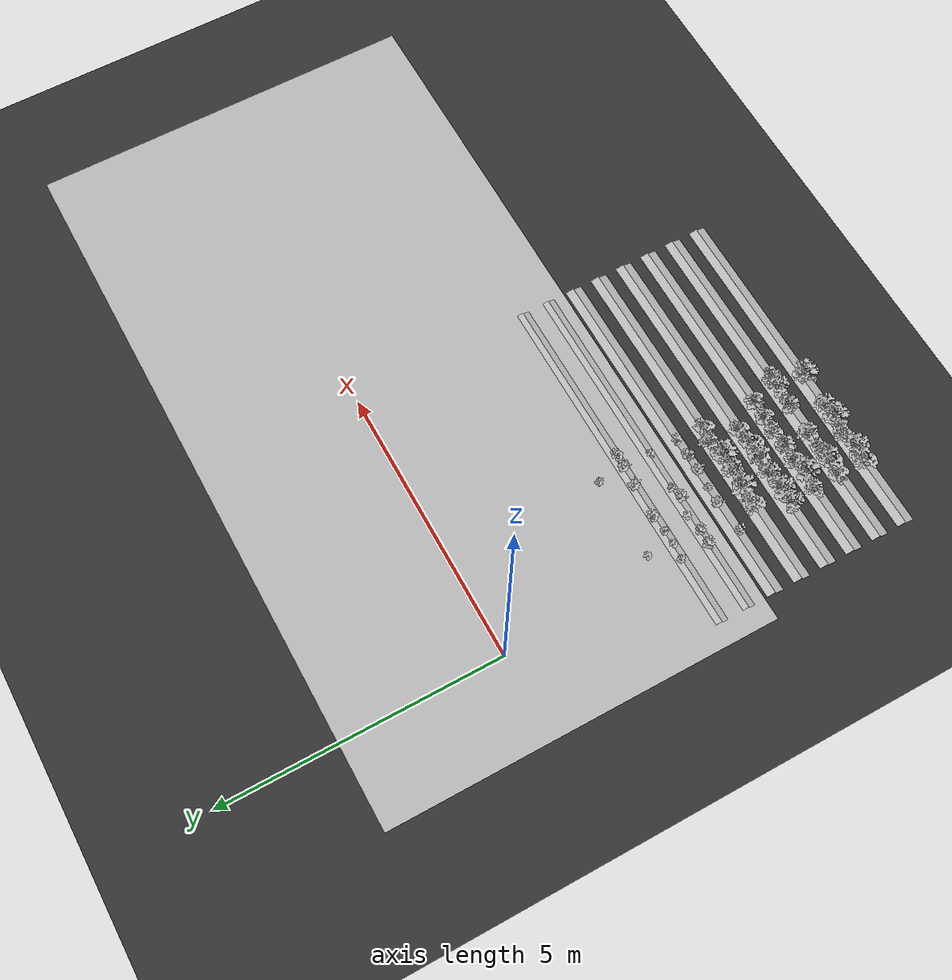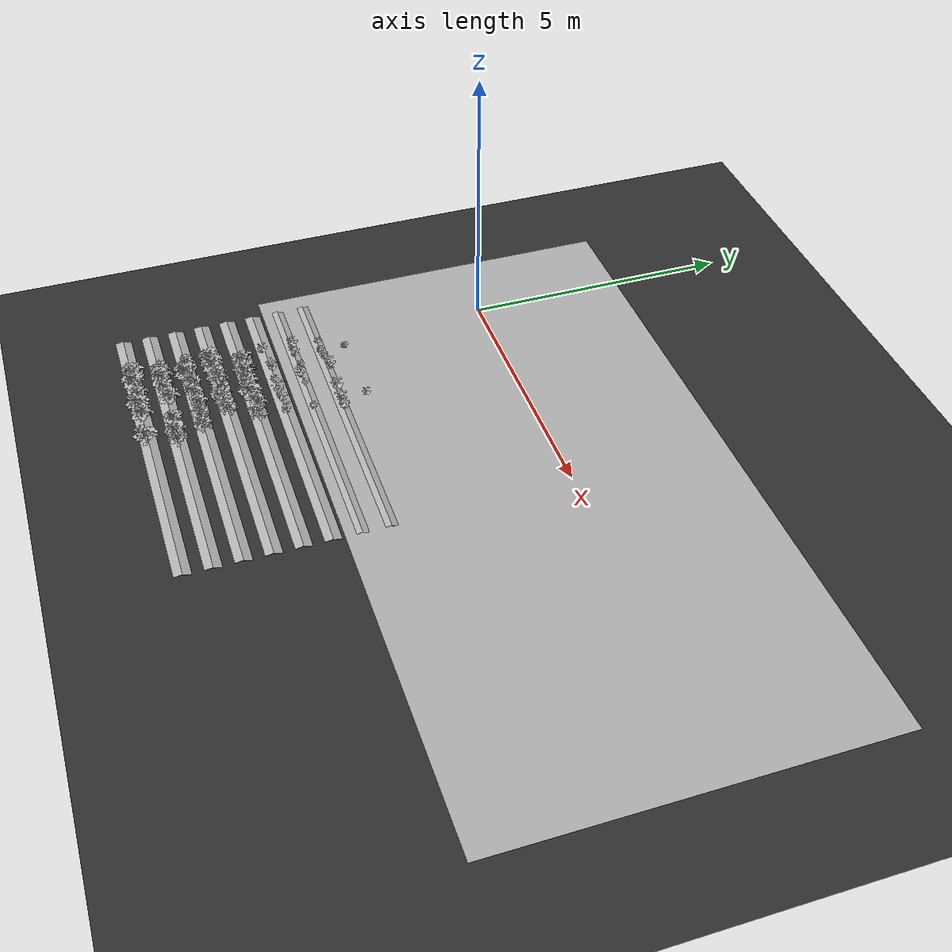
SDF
<sdf version="1.7">
 <world name="default">
  <model name="ground_plane">
   <static>1</static>
   <link name="link">
    <collision name="collision">
     <geometry><plane><normal>0 0 1</normal><size>100 100</size></plane></geometry>
     <surface>
      <contact><collide_bitmask>65535</collide_bitmask></contact>
      <friction><ode><mu>100</mu><mu2>50</mu2></ode></friction>
     </surface>
    </collision>
    <visual name="visual">
     <cast_shadows>0</cast_shadows>
     <geometry><plane><normal>0 0 1</normal><size>100 100</size></plane></geometry>
     <material>
      <ambient>0.2 0.2 0.2 1.0</ambient>
      <diffuse>0.2 0.2 0.2 1.0</diffuse>
      <specular>0.2 0.2 0.2 1.0</specular>
      <emissive>0.2 0.2 0.2 1.0</emissive>
     </material>
    </visual>
   </link>
  </model>
  <model name="ground">
   <pose>5 -0.5 0.01  3.141592654 0 0</pose>
   <static>true</static>
   <link name="body">
    <visual name="visual">
     <cast_shadows>0</cast_shadows>
     <geometry>
      <mesh><uri>file:///home/ifcosta/catkin_ws/src/cnn_line/worlds/models/ground.obj</uri></mesh>
     </geometry>
    </visual>
   </link>
  </model>
  <model name="plt_10000">
   <pose>-0.000553 -4.3 0.0132 0.0 0.0 1.0333</pose>
   <static>true</static>
   <link name="body">
    <visual name="visual">
     <geometry>
      <mesh><uri>file:///home/ifcosta/catkin_ws/src/cnn_line/worlds/models/plant12.obj</uri></mesh>
     </geometry>
    </visual>
   </link>
  </model>
  <model name="plt_10002">
   <pose>0.57 -4.24 0.0132 0.0 0.0 -0.0059313</pose>
   <static>true</static>
   <link name="body">
    <visual name="visual">
     <geometry>
      <mesh><uri>file:///home/ifcosta/catkin_ws/src/cnn_line/worlds/models/plant13.obj</uri></mesh>
     </geometry>
    </visual>
   </link>
  </model>
  <model name="plt_10003">
   <pose>0.885 -4.27 0.0162 0.0 0.0 0.86365</pose>
   <static>true</static>
   <link name="body">
    <visual name="visual">
     <geometry>
      <mesh><uri>file:///home/ifcosta/catkin_ws/src/cnn_line/worlds/models/plant10.obj</uri></mesh>
     </geometry>
    </visual>
   </link>
  </model>
  <model name="plt_10004">
   <pose>1.21 -4.27 0.0178 0.0 0.0 0.60568</pose>
   <static>true</static>
   <link name="body">
    <visual name="visual">
     <geometry>
      <mesh><uri>file:///home/ifcosta/catkin_ws/src/cnn_line/worlds/models/plant13.obj</uri></mesh>
     </geometry>
    </visual>
   </link>
  </model>
  <model name="plt_10005">
   <pose>1.5 -4.27 0.0163 0.0 0.0 -0.77135</pose>
   <static>true</static>
   <link name="body">
    <visual name="visual">
     <geometry>
      <mesh><uri>file:///home/ifcosta/catkin_ws/src/cnn_line/worlds/models/plant13.obj</uri></mesh>
     </geometry>
    </visual>
   </link>
  </model>
  <model name="plt_10006">
   <pose>1.82 -4.26 0.0144 0.0 0.0 -1.3984</pose>
   <static>true</static>
   <link name="body">
    <visual name="visual">
     <geometry>
      <mesh><uri>file:///home/ifcosta/catkin_ws/src/cnn_line/worlds/models/plant12.obj</uri></mesh>
     </geometry>
    </visual>
   </link>
  </model>
  <model name="slope_634">
   <pose>2.0 -4.25 -0.005 0.0 0.0 0.0</pose>
   <static>true</static>
   <link name="body">
    <visual name="visual">
     <geometry>
      <mesh><uri>file:///home/ifcosta/catkin_ws/src/cnn_line/worlds/models/slope.obj</uri></mesh>
     </geometry>
    </visual>
   </link>
  </model>
  <model name="slope_734">
   <pose>2.0 -4.25 -0.005 0.0 0.0 3.1416</pose>
   <static>true</static>
   <link name="body">
    <visual name="visual">
     <geometry>
      <mesh><uri>file:///home/ifcosta/catkin_ws/src/cnn_line/worlds/models/slope.obj</uri></mesh>
     </geometry>
    </visual>
   </link>
  </model>
  <model name="plt_10034">
   <pose>0.0405 -3.73 0.0151 0.0 0.0 1.2931</pose>
   <static>true</static>
   <link name="body">
    <visual name="visual">
     <geometry>
      <mesh><uri>file:///home/ifcosta/catkin_ws/src/cnn_line/worlds/models/plant13.obj</uri></mesh>
     </geometry>
    </visual>
   </link>
  </model>
  <model name="plt_20034">
   <pose>0.0405 -6.73 0.0151 0.0 0.0 1.4393</pose>
   <static>true</static>
   <link name="body">
    <visual name="visual">
     <geometry>
      <mesh><uri>file:///home/ifcosta/catkin_ws/src/cnn_line/worlds/models/plant22.obj</uri></mesh>
     </geometry>
    </visual>
   </link>
  </model>
  <model name="plt_10035">
   <pose>0.297 -3.74 0.019 0.0 0.0 1.4494</pose>
   <static>true</static>
   <link name="body">
    <visual name="visual">
     <geometry>
      <mesh><uri>file:///home/ifcosta/catkin_ws/src/cnn_line/worlds/models/plant12.obj</uri></mesh>
     </geometry>
    </visual>
   </link>
  </model>
  <model name="plt_20035">
   <pose>0.297 -6.74 0.019 0.0 0.0 0.020694</pose>
   <static>true</static>
   <link name="body">
    <visual name="visual">
     <geometry>
      <mesh><uri>file:///home/ifcosta/catkin_ws/src/cnn_line/worlds/models/plant22.obj</uri></mesh>
     </geometry>
    </visual>
   </link>
  </model>
  <model name="plt_10036">
   <pose>0.611 -3.71 0.0138 0.0 0.0 -1.443</pose>
   <static>true</static>
   <link name="body">
    <visual name="visual">
     <geometry>
      <mesh><uri>file:///home/ifcosta/catkin_ws/src/cnn_line/worlds/models/plant10.obj</uri></mesh>
     </geometry>
    </visual>
   </link>
  </model>
  <model name="plt_20036">
   <pose>0.611 -6.71 0.0138 0.0 0.0 -0.1211</pose>
   <static>true</static>
   <link name="body">
    <visual name="visual">
     <geometry>
      <mesh><uri>file:///home/ifcosta/catkin_ws/src/cnn_line/worlds/models/plant20.obj</uri></mesh>
     </geometry>
    </visual>
   </link>
  </model>
  <model name="plt_10037">
   <pose>0.934 -3.77 0.0124 0.0 0.0 2.123</pose>
   <static>true</static>
   <link name="body">
    <visual name="visual">
     <geometry>
      <mesh><uri>file:///home/ifcosta/catkin_ws/src/cnn_line/worlds/models/plant13.obj</uri></mesh>
     </geometry>
    </visual>
   </link>
  </model>
  <model name="plt_20037">
   <pose>0.934 -6.77 0.0124 0.0 0.0 -0.82727</pose>
   <static>true</static>
   <link name="body">
    <visual name="visual">
     <geometry>
      <mesh><uri>file:///home/ifcosta/catkin_ws/src/cnn_line/worlds/models/plant22.obj</uri></mesh>
     </geometry>
    </visual>
   </link>
  </model>
  <model name="plt_10038">
   <pose>1.16 -3.74 0.014 0.0 0.0 1.8705</pose>
   <static>true</static>
   <link name="body">
    <visual name="visual">
     <geometry>
      <mesh><uri>file:///home/ifcosta/catkin_ws/src/cnn_line/worlds/models/plant10.obj</uri></mesh>
     </geometry>
    </visual>
   </link>
  </model>
  <model name="plt_20038">
   <pose>1.16 -6.74 0.014 0.0 0.0 0.20178</pose>
   <static>true</static>
   <link name="body">
    <visual name="visual">
     <geometry>
      <mesh><uri>file:///home/ifcosta/catkin_ws/src/cnn_line/worlds/models/plant21.obj</uri></mesh>
     </geometry>
    </visual>
   </link>
  </model>
  <model name="plt_10040">
   <pose>1.84 -3.77 0.0124 0.0 0.0 -0.9127</pose>
   <static>true</static>
   <link name="body">
    <visual name="visual">
     <geometry>
      <mesh><uri>file:///home/ifcosta/catkin_ws/src/cnn_line/worlds/models/plant10.obj</uri></mesh>
     </geometry>
    </visual>
   </link>
  </model>
  <model name="plt_20040">
   <pose>1.84 -6.77 0.0124 0.0 0.0 -0.78306</pose>
   <static>true</static>
   <link name="body">
    <visual name="visual">
     <geometry>
      <mesh><uri>file:///home/ifcosta/catkin_ws/src/cnn_line/worlds/models/plant22.obj</uri></mesh>
     </geometry>
    </visual>
   </link>
  </model>
  <model name="slope_668">
   <pose>2.0 -3.75 -0.005 0.0 0.0 0.0</pose>
   <static>true</static>
   <link name="body">
    <visual name="visual">
     <geometry>
      <mesh><uri>file:///home/ifcosta/catkin_ws/src/cnn_line/worlds/models/slope.obj</uri></mesh>
     </geometry>
    </visual>
   </link>
  </model>
  <model name="slope_768">
   <pose>2.0 -3.75 -0.005 0.0 0.0 3.1416</pose>
   <static>true</static>
   <link name="body">
    <visual name="visual">
     <geometry>
      <mesh><uri>file:///home/ifcosta/catkin_ws/src/cnn_line/worlds/models/slope.obj</uri></mesh>
     </geometry>
    </visual>
   </link>
  </model>
  <model name="slope_1068">
   <pose>2.0 -6.75 -0.005 0.0 0.0 0.0</pose>
   <static>true</static>
   <link name="body">
    <visual name="visual">
     <geometry>
      <mesh><uri>file:///home/ifcosta/catkin_ws/src/cnn_line/worlds/models/slope.obj</uri></mesh>
     </geometry>
    </visual>
   </link>
  </model>
  <model name="slope_1168">
   <pose>2.0 -6.75 -0.005 0.0 0.0 3.1416</pose>
   <static>true</static>
   <link name="body">
    <visual name="visual">
     <geometry>
      <mesh><uri>file:///home/ifcosta/catkin_ws/src/cnn_line/worlds/models/slope.obj</uri></mesh>
     </geometry>
    </visual>
   </link>
  </model>
  <model name="plt_10068">
   <pose>0.0357 -3.23 0.0153 0.0 0.0 0.83453</pose>
   <static>true</static>
   <link name="body">
    <visual name="visual">
     <geometry>
      <mesh><uri>file:///home/ifcosta/catkin_ws/src/cnn_line/worlds/models/plant10.obj</uri></mesh>
     </geometry>
    </visual>
   </link>
  </model>
  <model name="plt_20068">
   <pose>0.0357 -6.23 0.0153 0.0 0.0 0.87542</pose>
   <static>true</static>
   <link name="body">
    <visual name="visual">
     <geometry>
      <mesh><uri>file:///home/ifcosta/catkin_ws/src/cnn_line/worlds/models/plant20.obj</uri></mesh>
     </geometry>
    </visual>
   </link>
  </model>
  <model name="plt_10069">
   <pose>0.307 -3.26 0.015 0.0 0.0 -1.1379</pose>
   <static>true</static>
   <link name="body">
    <visual name="visual">
     <geometry>
      <mesh><uri>file:///home/ifcosta/catkin_ws/src/cnn_line/worlds/models/plant10.obj</uri></mesh>
     </geometry>
    </visual>
   </link>
  </model>
  <model name="plt_20069">
   <pose>0.307 -6.26 0.015 0.0 0.0 1.1881</pose>
   <static>true</static>
   <link name="body">
    <visual name="visual">
     <geometry>
      <mesh><uri>file:///home/ifcosta/catkin_ws/src/cnn_line/worlds/models/plant22.obj</uri></mesh>
     </geometry>
    </visual>
   </link>
  </model>
  <model name="plt_10070">
   <pose>0.559 -3.24 0.0151 0.0 0.0 0.24295</pose>
   <static>true</static>
   <link name="body">
    <visual name="visual">
     <geometry>
      <mesh><uri>file:///home/ifcosta/catkin_ws/src/cnn_line/worlds/models/plant11.obj</uri></mesh>
     </geometry>
    </visual>
   </link>
  </model>
  <model name="plt_20070">
   <pose>0.559 -6.24 0.0151 0.0 0.0 0.30563</pose>
   <static>true</static>
   <link name="body">
    <visual name="visual">
     <geometry>
      <mesh><uri>file:///home/ifcosta/catkin_ws/src/cnn_line/worlds/models/plant20.obj</uri></mesh>
     </geometry>
    </visual>
   </link>
  </model>
  <model name="plt_10071">
   <pose>0.858 -3.2 0.0126 0.0 0.0 -1.192</pose>
   <static>true</static>
   <link name="body">
    <visual name="visual">
     <geometry>
      <mesh><uri>file:///home/ifcosta/catkin_ws/src/cnn_line/worlds/models/plant13.obj</uri></mesh>
     </geometry>
    </visual>
   </link>
  </model>
  <model name="plt_20071">
   <pose>0.858 -6.2 0.0126 0.0 0.0 0.25189</pose>
   <static>true</static>
   <link name="body">
    <visual name="visual">
     <geometry>
      <mesh><uri>file:///home/ifcosta/catkin_ws/src/cnn_line/worlds/models/plant21.obj</uri></mesh>
     </geometry>
    </visual>
   </link>
  </model>
  <model name="plt_10073">
   <pose>1.47 -3.22 0.0157 0.0 0.0 0.56746</pose>
   <static>true</static>
   <link name="body">
    <visual name="visual">
     <geometry>
      <mesh><uri>file:///home/ifcosta/catkin_ws/src/cnn_line/worlds/models/plant13.obj</uri></mesh>
     </geometry>
    </visual>
   </link>
  </model>
  <model name="plt_20073">
   <pose>1.47 -6.22 0.0157 0.0 0.0 -1.5574</pose>
   <static>true</static>
   <link name="body">
    <visual name="visual">
     <geometry>
      <mesh><uri>file:///home/ifcosta/catkin_ws/src/cnn_line/worlds/models/plant20.obj</uri></mesh>
     </geometry>
    </visual>
   </link>
  </model>
  <model name="plt_10074">
   <pose>1.83 -3.24 0.0153 0.0 0.0 0.11117</pose>
   <static>true</static>
   <link name="body">
    <visual name="visual">
     <geometry>
      <mesh><uri>file:///home/ifcosta/catkin_ws/src/cnn_line/worlds/models/plant13.obj</uri></mesh>
     </geometry>
    </visual>
   </link>
  </model>
  <model name="plt_20074">
   <pose>1.83 -6.24 0.0153 0.0 0.0 -0.33971</pose>
   <static>true</static>
   <link name="body">
    <visual name="visual">
     <geometry>
      <mesh><uri>file:///home/ifcosta/catkin_ws/src/cnn_line/worlds/models/plant21.obj</uri></mesh>
     </geometry>
    </visual>
   </link>
  </model>
  <model name="plt_10075">
   <pose>2.05 -3.25 0.0147 0.0 0.0 -1.0087</pose>
   <static>true</static>
   <link name="body">
    <visual name="visual">
     <geometry>
      <mesh><uri>file:///home/ifcosta/catkin_ws/src/cnn_line/worlds/models/plant13.obj</uri></mesh>
     </geometry>
    </visual>
   </link>
  </model>
  <model name="plt_20075">
   <pose>2.05 -6.25 0.0147 0.0 0.0 -2.0873</pose>
   <static>true</static>
   <link name="body">
    <visual name="visual">
     <geometry>
      <mesh><uri>file:///home/ifcosta/catkin_ws/src/cnn_line/worlds/models/plant20.obj</uri></mesh>
     </geometry>
    </visual>
   </link>
  </model>
  <model name="slope_702">
   <pose>2.0 -3.25 -0.005 0.0 0.0 0.0</pose>
   <static>true</static>
   <link name="body">
    <visual name="visual">
     <geometry>
      <mesh><uri>file:///home/ifcosta/catkin_ws/src/cnn_line/worlds/models/slope.obj</uri></mesh>
     </geometry>
    </visual>
   </link>
  </model>
  <model name="slope_802">
   <pose>2.0 -3.25 -0.005 0.0 0.0 3.1416</pose>
   <static>true</static>
   <link name="body">
    <visual name="visual">
     <geometry>
      <mesh><uri>file:///home/ifcosta/catkin_ws/src/cnn_line/worlds/models/slope.obj</uri></mesh>
     </geometry>
    </visual>
   </link>
  </model>
  <model name="slope_1102">
   <pose>2.0 -6.25 -0.005 0.0 0.0 0.0</pose>
   <static>true</static>
   <link name="body">
    <visual name="visual">
     <geometry>
      <mesh><uri>file:///home/ifcosta/catkin_ws/src/cnn_line/worlds/models/slope.obj</uri></mesh>
     </geometry>
    </visual>
   </link>
  </model>
  <model name="slope_1202">
   <pose>2.0 -6.25 -0.005 0.0 0.0 3.1416</pose>
   <static>true</static>
   <link name="body">
    <visual name="visual">
     <geometry>
      <mesh><uri>file:///home/ifcosta/catkin_ws/src/cnn_line/worlds/models/slope.obj</uri></mesh>
     </geometry>
    </visual>
   </link>
  </model>
  <model name="plt_20102">
   <pose>-0.0036 -5.74 0.0161 0.0 0.0 -0.56653</pose>
   <static>true</static>
   <link name="body">
    <visual name="visual">
     <geometry>
      <mesh><uri>file:///home/ifcosta/catkin_ws/src/cnn_line/worlds/models/plant20.obj</uri></mesh>
     </geometry>
    </visual>
   </link>
  </model>
  <model name="plt_10103">
   <pose>0.327 -2.79 0.0177 0.0 0.0 -1.4114</pose>
   <static>true</static>
   <link name="body">
    <visual name="visual">
     <geometry>
      <mesh><uri>file:///home/ifcosta/catkin_ws/src/cnn_line/worlds/models/plant10.obj</uri></mesh>
     </geometry>
    </visual>
   </link>
  </model>
  <model name="plt_20103">
   <pose>0.327 -5.79 0.0177 0.0 0.0 -0.26181</pose>
   <static>true</static>
   <link name="body">
    <visual name="visual">
     <geometry>
      <mesh><uri>file:///home/ifcosta/catkin_ws/src/cnn_line/worlds/models/plant22.obj</uri></mesh>
     </geometry>
    </visual>
   </link>
  </model>
  <model name="plt_20104">
   <pose>0.583 -5.73 0.0131 0.0 0.0 1.1489</pose>
   <static>true</static>
   <link name="body">
    <visual name="visual">
     <geometry>
      <mesh><uri>file:///home/ifcosta/catkin_ws/src/cnn_line/worlds/models/plant20.obj</uri></mesh>
     </geometry>
    </visual>
   </link>
  </model>
  <model name="plt_20105">
   <pose>0.88 -5.75 0.0171 0.0 0.0 -2.5779</pose>
   <static>true</static>
   <link name="body">
    <visual name="visual">
     <geometry>
      <mesh><uri>file:///home/ifcosta/catkin_ws/src/cnn_line/worlds/models/plant20.obj</uri></mesh>
     </geometry>
    </visual>
   </link>
  </model>
  <model name="plt_20106">
   <pose>1.18 -5.73 0.0154 0.0 0.0 -0.17822</pose>
   <static>true</static>
   <link name="body">
    <visual name="visual">
     <geometry>
      <mesh><uri>file:///home/ifcosta/catkin_ws/src/cnn_line/worlds/models/plant20.obj</uri></mesh>
     </geometry>
    </visual>
   </link>
  </model>
  <model name="plt_20107">
   <pose>1.47 -5.74 0.0135 0.0 0.0 1.0965</pose>
   <static>true</static>
   <link name="body">
    <visual name="visual">
     <geometry>
      <mesh><uri>file:///home/ifcosta/catkin_ws/src/cnn_line/worlds/models/plant20.obj</uri></mesh>
     </geometry>
    </visual>
   </link>
  </model>
  <model name="plt_10108">
   <pose>1.8 -2.76 0.0135 0.0 0.0 0.76403</pose>
   <static>true</static>
   <link name="body">
    <visual name="visual">
     <geometry>
      <mesh><uri>file:///home/ifcosta/catkin_ws/src/cnn_line/worlds/models/plant11.obj</uri></mesh>
     </geometry>
    </visual>
   </link>
  </model>
  <model name="plt_20108">
   <pose>1.8 -5.76 0.0135 0.0 0.0 1.401</pose>
   <static>true</static>
   <link name="body">
    <visual name="visual">
     <geometry>
      <mesh><uri>file:///home/ifcosta/catkin_ws/src/cnn_line/worlds/models/plant20.obj</uri></mesh>
     </geometry>
    </visual>
   </link>
  </model>
  <model name="slope_1136">
   <pose>2.0 -5.75 -0.005 0.0 0.0 0.0</pose>
   <static>true</static>
   <link name="body">
    <visual name="visual">
     <geometry>
      <mesh><uri>file:///home/ifcosta/catkin_ws/src/cnn_line/worlds/models/slope.obj</uri></mesh>
     </geometry>
    </visual>
   </link>
  </model>
  <model name="slope_1236">
   <pose>2.0 -5.75 -0.005 0.0 0.0 3.1416</pose>
   <static>true</static>
   <link name="body">
    <visual name="visual">
     <geometry>
      <mesh><uri>file:///home/ifcosta/catkin_ws/src/cnn_line/worlds/models/slope.obj</uri></mesh>
     </geometry>
    </visual>
   </link>
  </model>
  <model name="plt_20136">
   <pose>-0.0215 -5.29 0.0179 0.0 0.0 -0.53016</pose>
   <static>true</static>
   <link name="body">
    <visual name="visual">
     <geometry>
      <mesh><uri>file:///home/ifcosta/catkin_ws/src/cnn_line/worlds/models/plant21.obj</uri></mesh>
     </geometry>
    </visual>
   </link>
  </model>
  <model name="plt_20137">
   <pose>0.264 -5.27 0.0141 0.0 0.0 0.032294</pose>
   <static>true</static>
   <link name="body">
    <visual name="visual">
     <geometry>
      <mesh><uri>file:///home/ifcosta/catkin_ws/src/cnn_line/worlds/models/plant22.obj</uri></mesh>
     </geometry>
    </visual>
   </link>
  </model>
  <model name="plt_20138">
   <pose>0.559 -5.25 0.014 0.0 0.0 -0.13002</pose>
   <static>true</static>
   <link name="body">
    <visual name="visual">
     <geometry>
      <mesh><uri>file:///home/ifcosta/catkin_ws/src/cnn_line/worlds/models/plant21.obj</uri></mesh>
     </geometry>
    </visual>
   </link>
  </model>
  <model name="plt_20139">
   <pose>0.912 -5.26 0.0127 0.0 0.0 -2.2165</pose>
   <static>true</static>
   <link name="body">
    <visual name="visual">
     <geometry>
      <mesh><uri>file:///home/ifcosta/catkin_ws/src/cnn_line/worlds/models/plant21.obj</uri></mesh>
     </geometry>
    </visual>
   </link>
  </model>
  <model name="plt_20140">
   <pose>1.18 -5.3 0.0153 0.0 0.0 1.3003</pose>
   <static>true</static>
   <link name="body">
    <visual name="visual">
     <geometry>
      <mesh><uri>file:///home/ifcosta/catkin_ws/src/cnn_line/worlds/models/plant21.obj</uri></mesh>
     </geometry>
    </visual>
   </link>
  </model>
  <model name="plt_20141">
   <pose>1.49 -5.25 0.0152 0.0 0.0 0.77002</pose>
   <static>true</static>
   <link name="body">
    <visual name="visual">
     <geometry>
      <mesh><uri>file:///home/ifcosta/catkin_ws/src/cnn_line/worlds/models/plant20.obj</uri></mesh>
     </geometry>
    </visual>
   </link>
  </model>
  <model name="slope_1170">
   <pose>2.0 -5.25 -0.005 0.0 0.0 0.0</pose>
   <static>true</static>
   <link name="body">
    <visual name="visual">
     <geometry>
      <mesh><uri>file:///home/ifcosta/catkin_ws/src/cnn_line/worlds/models/slope.obj</uri></mesh>
     </geometry>
    </visual>
   </link>
  </model>
  <model name="slope_1270">
   <pose>2.0 -5.25 -0.005 0.0 0.0 3.1416</pose>
   <static>true</static>
   <link name="body">
    <visual name="visual">
     <geometry>
      <mesh><uri>file:///home/ifcosta/catkin_ws/src/cnn_line/worlds/models/slope.obj</uri></mesh>
     </geometry>
    </visual>
   </link>
  </model>
  <model name="plt_20171">
   <pose>0.268 -4.73 0.0156 0.0 0.0 1.1913</pose>
   <static>true</static>
   <link name="body">
    <visual name="visual">
     <geometry>
      <mesh><uri>file:///home/ifcosta/catkin_ws/src/cnn_line/worlds/models/plant21.obj</uri></mesh>
     </geometry>
    </visual>
   </link>
  </model>
  <model name="plt_20172">
   <pose>0.625 -4.75 0.0164 0.0 0.0 -2.4654</pose>
   <static>true</static>
   <link name="body">
    <visual name="visual">
     <geometry>
      <mesh><uri>file:///home/ifcosta/catkin_ws/src/cnn_line/worlds/models/plant22.obj</uri></mesh>
     </geometry>
    </visual>
   </link>
  </model>
  <model name="plt_20173">
   <pose>0.907 -4.77 0.0145 0.0 0.0 0.38624</pose>
   <static>true</static>
   <link name="body">
    <visual name="visual">
     <geometry>
      <mesh><uri>file:///home/ifcosta/catkin_ws/src/cnn_line/worlds/models/plant21.obj</uri></mesh>
     </geometry>
    </visual>
   </link>
  </model>
  <model name="plt_20174">
   <pose>1.24 -4.78 0.0161 0.0 0.0 -0.98745</pose>
   <static>true</static>
   <link name="body">
    <visual name="visual">
     <geometry>
      <mesh><uri>file:///home/ifcosta/catkin_ws/src/cnn_line/worlds/models/plant22.obj</uri></mesh>
     </geometry>
    </visual>
   </link>
  </model>
  <model name="plt_20175">
   <pose>1.51 -4.69 0.0125 0.0 0.0 -0.72236</pose>
   <static>true</static>
   <link name="body">
    <visual name="visual">
     <geometry>
      <mesh><uri>file:///home/ifcosta/catkin_ws/src/cnn_line/worlds/models/plant20.obj</uri></mesh>
     </geometry>
    </visual>
   </link>
  </model>
  <model name="plt_20176">
   <pose>1.8 -4.77 0.0132 0.0 0.0 0.56056</pose>
   <static>true</static>
   <link name="body">
    <visual name="visual">
     <geometry>
      <mesh><uri>file:///home/ifcosta/catkin_ws/src/cnn_line/worlds/models/plant20.obj</uri></mesh>
     </geometry>
    </visual>
   </link>
  </model>
  <model name="slope_1204">
   <pose>2.0 -4.75 -0.005 0.0 0.0 0.0</pose>
   <static>true</static>
   <link name="body">
    <visual name="visual">
     <geometry>
      <mesh><uri>file:///home/ifcosta/catkin_ws/src/cnn_line/worlds/models/slope.obj</uri></mesh>
     </geometry>
    </visual>
   </link>
  </model>
  <model name="slope_1304">
   <pose>2.0 -4.75 -0.005 0.0 0.0 3.1416</pose>
   <static>true</static>
   <link name="body">
    <visual name="visual">
     <geometry>
      <mesh><uri>file:///home/ifcosta/catkin_ws/src/cnn_line/worlds/models/slope.obj</uri></mesh>
     </geometry>
    </visual>
   </link>
  </model>
 </world>
</sdf>
